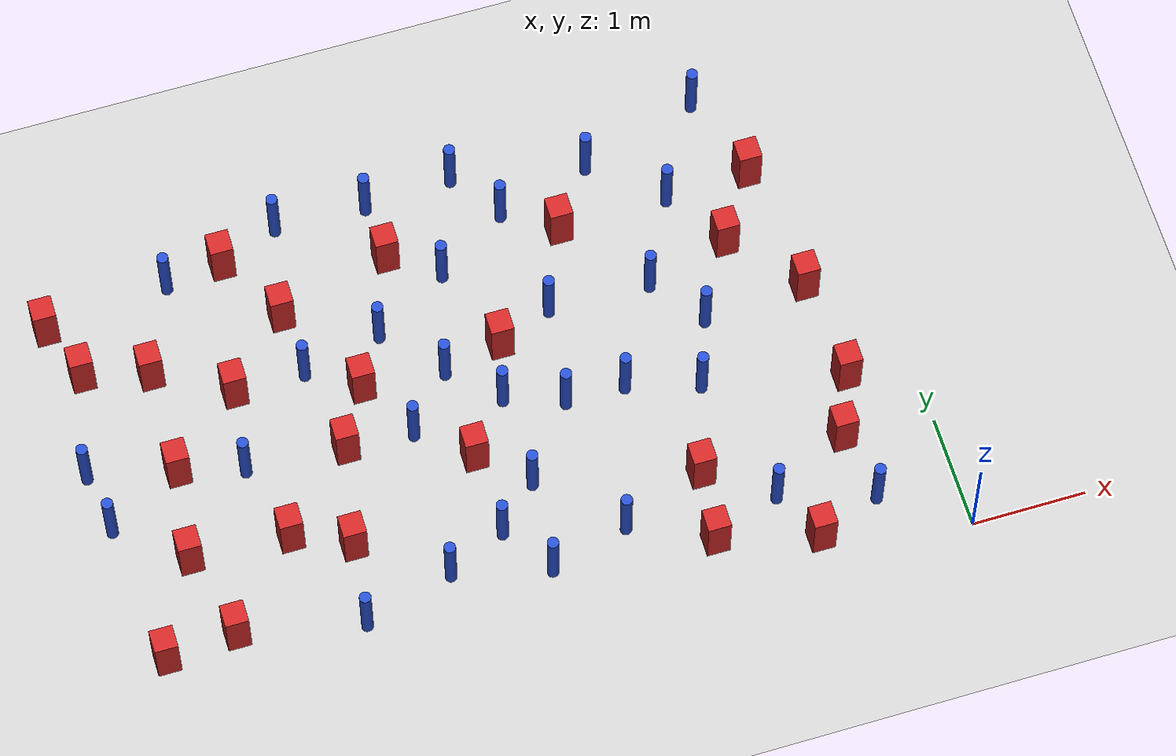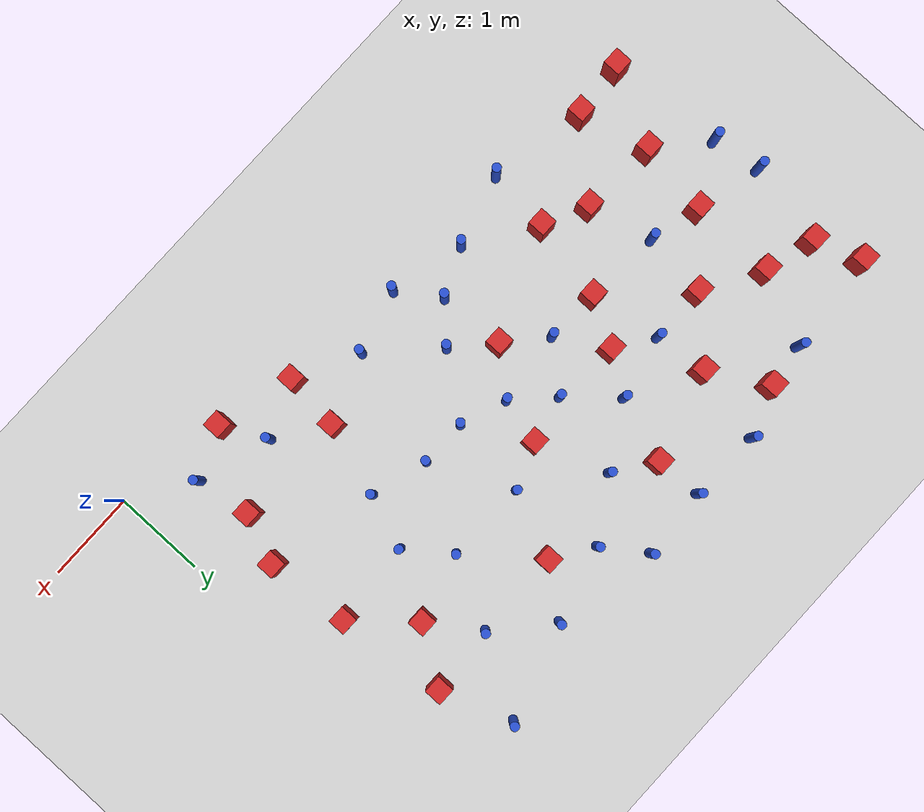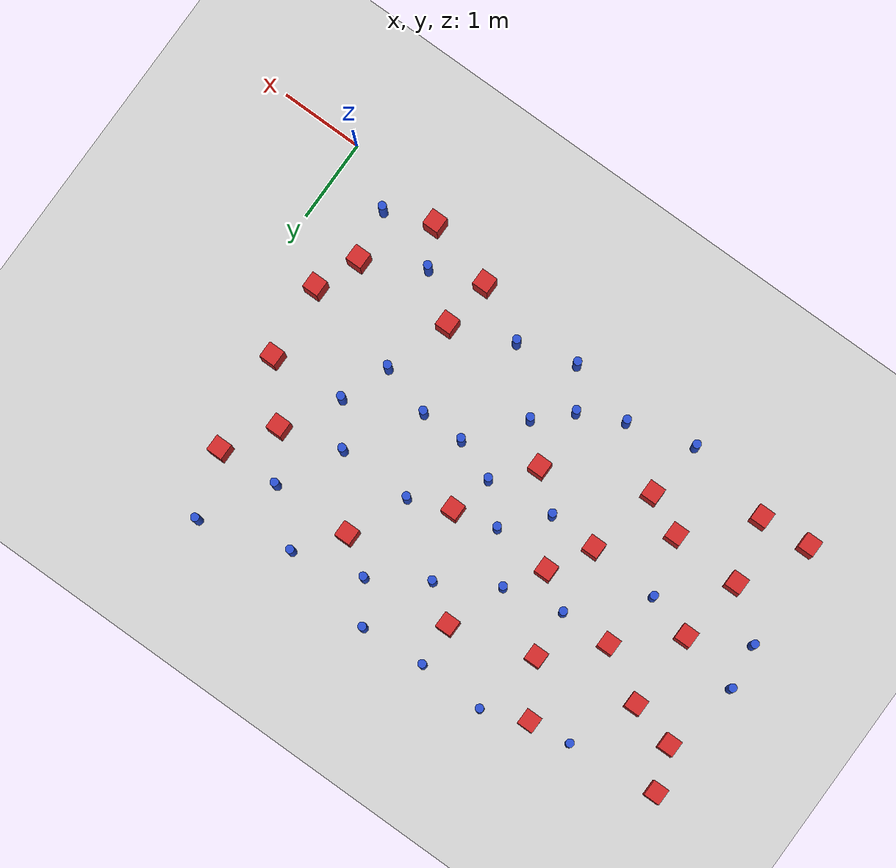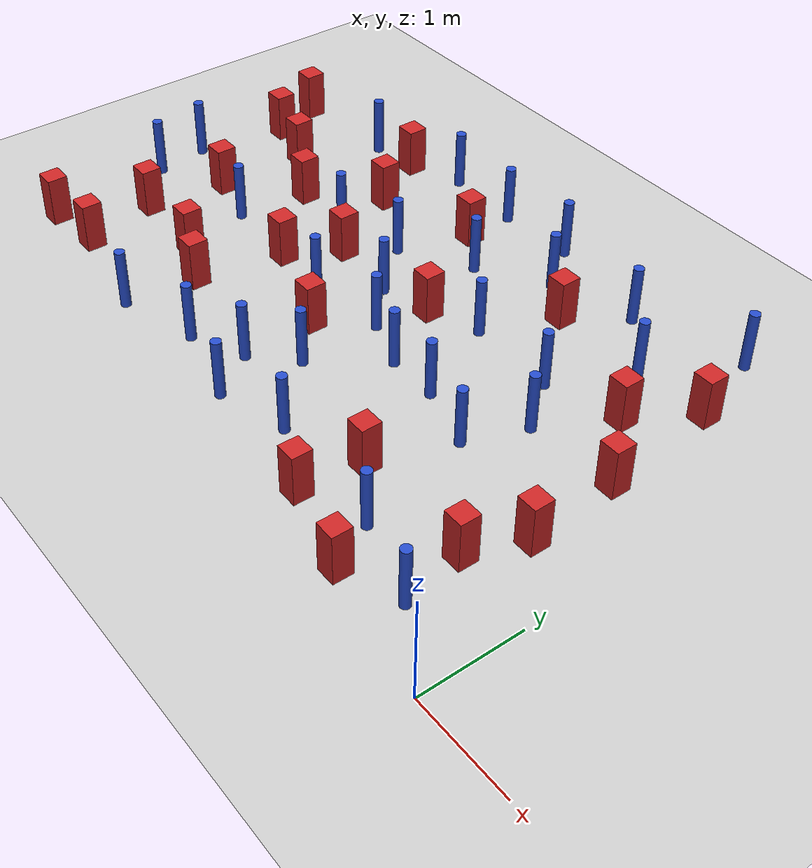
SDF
<sdf version="1.6">
 <world name="default">
  <model name="ground_plane">
   <static>1</static>
   <link name="link">
    <collision name="collision">
     <geometry><plane><normal>0 0 1</normal><size>100 100</size></plane></geometry>
     <surface><friction><ode><mu>100</mu><mu2>50</mu2></ode></friction></surface>
    </collision>
    <visual name="visual">
     <cast_shadows>0</cast_shadows>
     <geometry><plane><normal>0 0 1</normal><size>100 100</size></plane></geometry>
     <material>
      <ambient>1.0 1.0 1.0 1.0</ambient>
      <diffuse>0.8 0.8 0.8 1.0</diffuse>
      <specular>0.01 0.01 0.01 1.000000</specular>
     </material>
    </visual>
   </link>
  </model>
  <model name="square_post_obstacle5">
   <static>true</static>
   <pose>-6.98999241708 3.96937142927 1.91545236811e-07 -7.35059704564e-06 1.12565212e-07 2.39332434364e-05</pose>
   <link name="link">
    <pose>0 0 0.25 0 -0 0</pose>
    <inertial>
     <mass>100</mass>
     <inertia>
      <ixx>0.166667</ixx>
      <ixy>0</ixy>
      <ixz>0</ixz>
      <iyy>0.166667</iyy>
      <iyz>0</iyz>
      <izz>0.166667</izz>
     </inertia>
    </inertial>
    <collision name="collision"><geometry><box><size>.2 .2 .5</size></box></geometry></collision>
    <visual name="visual">
     <geometry><box><size>.2 .2 .5</size></box></geometry>
     <material>
      <script><name>Gazebo/Red</name><uri>file://media/materials/scripts/gazebo.material</uri></script>
     </material>
    </visual>
   </link>
  </model>
  <model name="square_post_obstacle8">
   <static>true</static>
   <pose>-2.52519117045 3.64244328598 1.91545236811e-07 -7.35059704564e-06 1.12565212e-07 2.39332434364e-05</pose>
   <link name="link">
    <pose>0 0 0.25 0 -0 0</pose>
    <inertial>
     <mass>100</mass>
     <inertia>
      <ixx>0.166667</ixx>
      <ixy>0</ixy>
      <ixz>0</ixz>
      <iyy>0.166667</iyy>
      <iyz>0</iyz>
      <izz>0.166667</izz>
     </inertia>
    </inertial>
    <collision name="collision"><geometry><box><size>.2 .2 .5</size></box></geometry></collision>
    <visual name="visual">
     <geometry><box><size>.2 .2 .5</size></box></geometry>
     <material>
      <script><name>Gazebo/Red</name><uri>file://media/materials/scripts/gazebo.material</uri></script>
     </material>
    </visual>
   </link>
  </model>
  <model name="pole_obstacle8">
   <static>true</static>
   <pose>-6.91975358773 2.00622611297 7.38925637345e-09 -8.47170692799e-08 1.24976765078e-08 -1.74513093016e-07</pose>
   <link name="link">
    <pose>0 0 0.3 0 -0 0</pose>
    <inertial>
     <mass>1</mass>
     <inertia><ixx>0.145833</ixx><ixy>0</ixy><ixz>0</ixz><iyy>0.145833</iyy><iyz>0</iyz><izz>0.125</izz></inertia>
    </inertial>
    <collision name="collision">
     <geometry><cylinder><radius>0.05</radius><length>.6</length></cylinder></geometry>
    </collision>
    <visual name="visual">
     <geometry><cylinder><radius>0.05</radius><length>.6</length></cylinder></geometry>
     <material>
      <script><name>Gazebo/Blue</name><uri>file://media/materials/scripts/gazebo.material</uri></script>
     </material>
    </visual>
   </link>
  </model>
  <model name="pole_obstacle10">
   <static>true</static>
   <pose>-2.79781469311 0.792266779906 7.38925637345e-09 -8.471706928e-08 1.24976765177e-08 -1.74513093012e-07</pose>
   <link name="link">
    <pose>0 0 0.3 0 -0 0</pose>
    <inertial>
     <mass>1</mass>
     <inertia><ixx>0.145833</ixx><ixy>0</ixy><ixz>0</ixz><iyy>0.145833</iyy><iyz>0</iyz><izz>0.125</izz></inertia>
    </inertial>
    <collision name="collision">
     <geometry><cylinder><radius>0.05</radius><length>.6</length></cylinder></geometry>
    </collision>
    <visual name="visual">
     <geometry><cylinder><radius>0.05</radius><length>.6</length></cylinder></geometry>
     <material>
      <script><name>Gazebo/Blue</name><uri>file://media/materials/scripts/gazebo.material</uri></script>
     </material>
    </visual>
   </link>
  </model>
  <model name="pole_obstacle16">
   <static>true</static>
   <pose>-3.49376932607 0.596809447296 7.38925637345e-09 -8.47170692796e-08 1.24976764768e-08 -1.74513093035e-07</pose>
   <link name="link">
    <pose>0 0 0.3 0 -0 0</pose>
    <inertial>
     <mass>1</mass>
     <inertia><ixx>0.145833</ixx><ixy>0</ixy><ixz>0</ixz><iyy>0.145833</iyy><iyz>0</iyz><izz>0.125</izz></inertia>
    </inertial>
    <collision name="collision">
     <geometry><cylinder><radius>0.05</radius><length>.6</length></cylinder></geometry>
    </collision>
    <visual name="visual">
     <geometry><cylinder><radius>0.05</radius><length>.6</length></cylinder></geometry>
     <material>
      <script><name>Gazebo/Blue</name><uri>file://media/materials/scripts/gazebo.material</uri></script>
     </material>
    </visual>
   </link>
  </model>
  <model name="pole_obstacle17">
   <static>true</static>
   <pose>-1.50419928283 0.696034674528 7.38925637345e-09 -8.47170692799e-08 1.24976765075e-08 -1.74513093017e-07</pose>
   <link name="link">
    <pose>0 0 0.3 0 -0 0</pose>
    <inertial>
     <mass>1</mass>
     <inertia><ixx>0.145833</ixx><ixy>0</ixy><ixz>0</ixz><iyy>0.145833</iyy><iyz>0</iyz><izz>0.125</izz></inertia>
    </inertial>
    <collision name="collision">
     <geometry><cylinder><radius>0.05</radius><length>.6</length></cylinder></geometry>
    </collision>
    <visual name="visual">
     <geometry><cylinder><radius>0.05</radius><length>.6</length></cylinder></geometry>
     <material>
      <script><name>Gazebo/Blue</name><uri>file://media/materials/scripts/gazebo.material</uri></script>
     </material>
    </visual>
   </link>
  </model>
  <model name="square_post_obstacle28">
   <static>true</static>
   <pose>-6.80364117076 3.45359508598 1.91545236811e-07 -7.35059704564e-06 1.12565212e-07 2.39332434364e-05</pose>
   <link name="link">
    <pose>0 0 0.25 0 -0 0</pose>
    <inertial>
     <mass>100</mass>
     <inertia>
      <ixx>0.166667</ixx>
      <ixy>0</ixy>
      <ixz>0</ixz>
      <iyy>0.166667</iyy>
      <iyz>0</iyz>
      <izz>0.166667</izz>
     </inertia>
    </inertial>
    <collision name="collision"><geometry><box><size>.2 .2 .5</size></box></geometry></collision>
    <visual name="visual">
     <geometry><box><size>.2 .2 .5</size></box></geometry>
     <material>
      <script><name>Gazebo/Red</name><uri>file://media/materials/scripts/gazebo.material</uri></script>
     </material>
    </visual>
   </link>
  </model>
  <model name="square_post_obstacle34">
   <static>true</static>
   <pose>-3.32184518788 2.73086201394 1.91545236811e-07 -7.35059704564e-06 1.12565212e-07 2.39332434364e-05</pose>
   <link name="link">
    <pose>0 0 0.25 0 -0 0</pose>
    <inertial>
     <mass>100</mass>
     <inertia>
      <ixx>0.166667</ixx>
      <ixy>0</ixy>
      <ixz>0</ixz>
      <iyy>0.166667</iyy>
      <iyz>0</iyz>
      <izz>0.166667</izz>
     </inertia>
    </inertial>
    <collision name="collision"><geometry><box><size>.2 .2 .5</size></box></geometry></collision>
    <visual name="visual">
     <geometry><box><size>.2 .2 .5</size></box></geometry>
     <material>
      <script><name>Gazebo/Red</name><uri>file://media/materials/scripts/gazebo.material</uri></script>
     </material>
    </visual>
   </link>
  </model>
  <model name="pole_obstacle32">
   <static>true</static>
   <pose>-4.2829016265 3.11226452791 7.38925637345e-09 -8.47170692798e-08 1.24976764937e-08 -1.74513093023e-07</pose>
   <link name="link">
    <pose>0 0 0.3 0 -0 0</pose>
    <inertial>
     <mass>1</mass>
     <inertia><ixx>0.145833</ixx><ixy>0</ixy><ixz>0</ixz><iyy>0.145833</iyy><iyz>0</iyz><izz>0.125</izz></inertia>
    </inertial>
    <collision name="collision">
     <geometry><cylinder><radius>0.05</radius><length>.6</length></cylinder></geometry>
    </collision>
    <visual name="visual">
     <geometry><cylinder><radius>0.05</radius><length>.6</length></cylinder></geometry>
     <material>
      <script><name>Gazebo/Blue</name><uri>file://media/materials/scripts/gazebo.material</uri></script>
     </material>
    </visual>
   </link>
  </model>
  <model name="pole_obstacle35">
   <static>true</static>
   <pose>-4.25554316395 2.13546606847 7.38925637345e-09 -8.47170692798e-08 1.24976764937e-08 -1.74513093023e-07</pose>
   <link name="link">
    <pose>0 0 0.3 0 -0 0</pose>
    <inertial>
     <mass>1</mass>
     <inertia><ixx>0.145833</ixx><ixy>0</ixy><ixz>0</ixz><iyy>0.145833</iyy><iyz>0</iyz><izz>0.125</izz></inertia>
    </inertial>
    <collision name="collision">
     <geometry><cylinder><radius>0.05</radius><length>.6</length></cylinder></geometry>
    </collision>
    <visual name="visual">
     <geometry><cylinder><radius>0.05</radius><length>.6</length></cylinder></geometry>
     <material>
      <script><name>Gazebo/Blue</name><uri>file://media/materials/scripts/gazebo.material</uri></script>
     </material>
    </visual>
   </link>
  </model>
  <model name="pole_obstacle36">
   <static>true</static>
   <pose>-5.10923216508 0.572883189968 7.38925637345e-09 -8.47170692799e-08 1.24976765038e-08 -1.74513093018e-07</pose>
   <link name="link">
    <pose>0 0 0.3 0 -0 0</pose>
    <inertial>
     <mass>1</mass>
     <inertia><ixx>0.145833</ixx><ixy>0</ixy><ixz>0</ixz><iyy>0.145833</iyy><iyz>0</iyz><izz>0.125</izz></inertia>
    </inertial>
    <collision name="collision">
     <geometry><cylinder><radius>0.05</radius><length>.6</length></cylinder></geometry>
    </collision>
    <visual name="visual">
     <geometry><cylinder><radius>0.05</radius><length>.6</length></cylinder></geometry>
     <material>
      <script><name>Gazebo/Blue</name><uri>file://media/materials/scripts/gazebo.material</uri></script>
     </material>
    </visual>
   </link>
  </model>
  <model name="square_post_obstacle40">
   <static>true</static>
   <pose>-6.24178530278 3.30212405767 1.91545236811e-07 -7.35059704564e-06 1.12565212e-07 2.39332434364e-05</pose>
   <link name="link">
    <pose>0 0 0.25 0 -0 0</pose>
    <inertial>
     <mass>100</mass>
     <inertia>
      <ixx>0.166667</ixx>
      <ixy>0</ixy>
      <ixz>0</ixz>
      <iyy>0.166667</iyy>
      <iyz>0</iyz>
      <izz>0.166667</izz>
     </inertia>
    </inertial>
    <collision name="collision"><geometry><box><size>.2 .2 .5</size></box></geometry></collision>
    <visual name="visual">
     <geometry><box><size>.2 .2 .5</size></box></geometry>
     <material>
      <script><name>Gazebo/Red</name><uri>file://media/materials/scripts/gazebo.material</uri></script>
     </material>
    </visual>
   </link>
  </model>
  <model name="square_post_obstacle44">
   <static>true</static>
   <pose>-6.16970190709 0.789479409449 1.91545236811e-07 -7.35059704564e-06 1.12565212e-07 2.39332434364e-05</pose>
   <link name="link">
    <pose>0 0 0.25 0 -0 0</pose>
    <inertial>
     <mass>100</mass>
     <inertia>
      <ixx>0.166667</ixx>
      <ixy>0</ixy>
      <ixz>0</ixz>
      <iyy>0.166667</iyy>
      <iyz>0</iyz>
      <izz>0.166667</izz>
     </inertia>
    </inertial>
    <collision name="collision"><geometry><box><size>.2 .2 .5</size></box></geometry></collision>
    <visual name="visual">
     <geometry><box><size>.2 .2 .5</size></box></geometry>
     <material>
      <script><name>Gazebo/Red</name><uri>file://media/materials/scripts/gazebo.material</uri></script>
     </material>
    </visual>
   </link>
  </model>
  <model name="square_post_obstacle48">
   <static>true</static>
   <pose>-5.39204827083 4.14547654439 1.91545236811e-07 -7.35059704564e-06 1.12565212e-07 2.39332434364e-05</pose>
   <link name="link">
    <pose>0 0 0.25 0 -0 0</pose>
    <inertial>
     <mass>100</mass>
     <inertia>
      <ixx>0.166667</ixx>
      <ixy>0</ixy>
      <ixz>0</ixz>
      <iyy>0.166667</iyy>
      <iyz>0</iyz>
      <izz>0.166667</izz>
     </inertia>
    </inertial>
    <collision name="collision"><geometry><box><size>.2 .2 .5</size></box></geometry></collision>
    <visual name="visual">
     <geometry><box><size>.2 .2 .5</size></box></geometry>
     <material>
      <script><name>Gazebo/Red</name><uri>file://media/materials/scripts/gazebo.material</uri></script>
     </material>
    </visual>
   </link>
  </model>
  <model name="pole_obstacle52">
   <static>true</static>
   <pose>-0.69982684014 0.451758939972 7.38925637345e-09 -8.471706928e-08 1.24976765086e-08 -1.74513093015e-07</pose>
   <link name="link">
    <pose>0 0 0.3 0 -0 0</pose>
    <inertial>
     <mass>1</mass>
     <inertia><ixx>0.145833</ixx><ixy>0</ixy><ixz>0</ixz><iyy>0.145833</iyy><iyz>0</iyz><izz>0.125</izz></inertia>
    </inertial>
    <collision name="collision">
     <geometry><cylinder><radius>0.05</radius><length>.6</length></cylinder></geometry>
    </collision>
    <visual name="visual">
     <geometry><cylinder><radius>0.05</radius><length>.6</length></cylinder></geometry>
     <material>
      <script><name>Gazebo/Blue</name><uri>file://media/materials/scripts/gazebo.material</uri></script>
     </material>
    </visual>
   </link>
  </model>
  <model name="square_post_obstacle64">
   <static>true</static>
   <pose>-6.25594976934 2.36200466918 1.91545236811e-07 -7.35059704564e-06 1.12565212e-07 2.39332434364e-05</pose>
   <link name="link">
    <pose>0 0 0.25 0 -0 0</pose>
    <inertial>
     <mass>100</mass>
     <inertia>
      <ixx>0.166667</ixx>
      <ixy>0</ixy>
      <ixz>0</ixz>
      <iyy>0.166667</iyy>
      <iyz>0</iyz>
      <izz>0.166667</izz>
     </inertia>
    </inertial>
    <collision name="collision"><geometry><box><size>.2 .2 .5</size></box></geometry></collision>
    <visual name="visual">
     <geometry><box><size>.2 .2 .5</size></box></geometry>
     <material>
      <script><name>Gazebo/Red</name><uri>file://media/materials/scripts/gazebo.material</uri></script>
     </material>
    </visual>
   </link>
  </model>
  <model name="pole_obstacle71">
   <static>true</static>
   <pose>-1.93177611833 2.91109107932 7.38925637345e-09 -8.47170692799e-08 1.24976765053e-08 -1.74513093017e-07</pose>
   <link name="link">
    <pose>0 0 0.3 0 -0 0</pose>
    <inertial>
     <mass>1</mass>
     <inertia><ixx>0.145833</ixx><ixy>0</ixy><ixz>0</ixz><iyy>0.145833</iyy><iyz>0</iyz><izz>0.125</izz></inertia>
    </inertial>
    <collision name="collision">
     <geometry><cylinder><radius>0.05</radius><length>.6</length></cylinder></geometry>
    </collision>
    <visual name="visual">
     <geometry><cylinder><radius>0.05</radius><length>.6</length></cylinder></geometry>
     <material>
      <script><name>Gazebo/Blue</name><uri>file://media/materials/scripts/gazebo.material</uri></script>
     </material>
    </visual>
   </link>
  </model>
  <model name="pole_obstacle74">
   <static>true</static>
   <pose>-1.54972284094 3.6614878591 7.38925637345e-09 -8.47170692799e-08 1.24976765053e-08 -1.74513093017e-07</pose>
   <link name="link">
    <pose>0 0 0.3 0 -0 0</pose>
    <inertial>
     <mass>1</mass>
     <inertia><ixx>0.145833</ixx><ixy>0</ixy><ixz>0</ixz><iyy>0.145833</iyy><iyz>0</iyz><izz>0.125</izz></inertia>
    </inertial>
    <collision name="collision">
     <geometry><cylinder><radius>0.05</radius><length>.6</length></cylinder></geometry>
    </collision>
    <visual name="visual">
     <geometry><cylinder><radius>0.05</radius><length>.6</length></cylinder></geometry>
     <material>
      <script><name>Gazebo/Blue</name><uri>file://media/materials/scripts/gazebo.material</uri></script>
     </material>
    </visual>
   </link>
  </model>
  <model name="square_post_obstacle80">
   <static>true</static>
   <pose>-4.84535821894 2.15911684776 1.91545236811e-07 -7.35059704564e-06 1.12565212e-07 2.39332434364e-05</pose>
   <link name="link">
    <pose>0 0 0.25 0 -0 0</pose>
    <inertial>
     <mass>100</mass>
     <inertia>
      <ixx>0.166667</ixx>
      <ixy>0</ixy>
      <ixz>0</ixz>
      <iyy>0.166667</iyy>
      <iyz>0</iyz>
      <izz>0.166667</izz>
     </inertia>
    </inertial>
    <collision name="collision"><geometry><box><size>.2 .2 .5</size></box></geometry></collision>
    <visual name="visual">
     <geometry><box><size>.2 .2 .5</size></box></geometry>
     <material>
      <script><name>Gazebo/Red</name><uri>file://media/materials/scripts/gazebo.material</uri></script>
     </material>
    </visual>
   </link>
  </model>
  <model name="pole_obstacle87">
   <static>true</static>
   <pose>-4.98737974748 2.94819570164 7.38925637345e-09 -8.47170692798e-08 1.24976764937e-08 -1.74513093023e-07</pose>
   <link name="link">
    <pose>0 0 0.3 0 -0 0</pose>
    <inertial>
     <mass>1</mass>
     <inertia><ixx>0.145833</ixx><ixy>0</ixy><ixz>0</ixz><iyy>0.145833</iyy><iyz>0</iyz><izz>0.125</izz></inertia>
    </inertial>
    <collision name="collision">
     <geometry><cylinder><radius>0.05</radius><length>.6</length></cylinder></geometry>
    </collision>
    <visual name="visual">
     <geometry><cylinder><radius>0.05</radius><length>.6</length></cylinder></geometry>
     <material>
      <script><name>Gazebo/Blue</name><uri>file://media/materials/scripts/gazebo.material</uri></script>
     </material>
    </visual>
   </link>
  </model>
  <model name="pole_obstacle92">
   <static>true</static>
   <pose>-1.06562229612 4.49181770895 7.38925637345e-09 -8.47170692799e-08 1.24976765033e-08 -1.74513093018e-07</pose>
   <link name="link">
    <pose>0 0 0.3 0 -0 0</pose>
    <inertial>
     <mass>1</mass>
     <inertia><ixx>0.145833</ixx><ixy>0</ixy><ixz>0</ixz><iyy>0.145833</iyy><iyz>0</iyz><izz>0.125</izz></inertia>
    </inertial>
    <collision name="collision">
     <geometry><cylinder><radius>0.05</radius><length>.6</length></cylinder></geometry>
    </collision>
    <visual name="visual">
     <geometry><cylinder><radius>0.05</radius><length>.6</length></cylinder></geometry>
     <material>
      <script><name>Gazebo/Blue</name><uri>file://media/materials/scripts/gazebo.material</uri></script>
     </material>
    </visual>
   </link>
  </model>
  <model name="square_post_obstacle84">
   <static>true</static>
   <pose>-3.82734107813 1.78002883543 1.91545236811e-07 -7.35059704564e-06 1.12565212e-07 2.39332434364e-05</pose>
   <link name="link">
    <pose>0 0 0.25 0 -0 0</pose>
    <inertial>
     <mass>100</mass>
     <inertia>
      <ixx>0.166667</ixx>
      <ixy>0</ixy>
      <ixz>0</ixz>
      <iyy>0.166667</iyy>
      <iyz>0</iyz>
      <izz>0.166667</izz>
     </inertia>
    </inertial>
    <collision name="collision"><geometry><box><size>.2 .2 .5</size></box></geometry></collision>
    <visual name="visual">
     <geometry><box><size>.2 .2 .5</size></box></geometry>
     <material>
      <script><name>Gazebo/Red</name><uri>file://media/materials/scripts/gazebo.material</uri></script>
     </material>
    </visual>
   </link>
  </model>
  <model name="pole_obstacle100">
   <static>true</static>
   <pose>-1.58048511842 2.45014951508 7.38925637345e-09 -8.47170692799e-08 1.24976765053e-08 -1.74513093017e-07</pose>
   <link name="link">
    <pose>0 0 0.3 0 -0 0</pose>
    <inertial>
     <mass>1</mass>
     <inertia><ixx>0.145833</ixx><ixy>0</ixy><ixz>0</ixz><iyy>0.145833</iyy><iyz>0</iyz><izz>0.125</izz></inertia>
    </inertial>
    <collision name="collision">
     <geometry><cylinder><radius>0.05</radius><length>.6</length></cylinder></geometry>
    </collision>
    <visual name="visual">
     <geometry><cylinder><radius>0.05</radius><length>.6</length></cylinder></geometry>
     <material>
      <script><name>Gazebo/Blue</name><uri>file://media/materials/scripts/gazebo.material</uri></script>
     </material>
    </visual>
   </link>
  </model>
  <model name="pole_obstacle110">
   <static>true</static>
   <pose>-3.42974630219 1.40898149596 7.38925637345e-09 -8.471706928e-08 1.24976765152e-08 -1.74513093012e-07</pose>
   <link name="link">
    <pose>0 0 0.3 0 -0 0</pose>
    <inertial>
     <mass>1</mass>
     <inertia><ixx>0.145833</ixx><ixy>0</ixy><ixz>0</ixz><iyy>0.145833</iyy><iyz>0</iyz><izz>0.125</izz></inertia>
    </inertial>
    <collision name="collision">
     <geometry><cylinder><radius>0.05</radius><length>.6</length></cylinder></geometry>
    </collision>
    <visual name="visual">
     <geometry><cylinder><radius>0.05</radius><length>.6</length></cylinder></geometry>
     <material>
      <script><name>Gazebo/Blue</name><uri>file://media/materials/scripts/gazebo.material</uri></script>
     </material>
    </visual>
   </link>
  </model>
  <model name="square_post_obstacle110">
   <static>true</static>
   <pose>-0.807407201912 1.06191888686 1.91545236811e-07 -7.35059704564e-06 1.12565212e-07 2.39332434364e-05</pose>
   <link name="link">
    <pose>0 0 0.25 0 -0 0</pose>
    <inertial>
     <mass>100</mass>
     <inertia>
      <ixx>0.166667</ixx>
      <ixy>0</ixy>
      <ixz>0</ixz>
      <iyy>0.166667</iyy>
      <iyz>0</iyz>
      <izz>0.166667</izz>
     </inertia>
    </inertial>
    <collision name="collision"><geometry><box><size>.2 .2 .5</size></box></geometry></collision>
    <visual name="visual">
     <geometry><box><size>.2 .2 .5</size></box></geometry>
     <material>
      <script><name>Gazebo/Red</name><uri>file://media/materials/scripts/gazebo.material</uri></script>
     </material>
    </visual>
   </link>
  </model>
  <model name="square_post_obstacle111">
   <static>true</static>
   <pose>-0.67257829505 2.51464468496 1.91545236811e-07 -7.35059704564e-06 1.12565212e-07 2.39332434364e-05</pose>
   <link name="link">
    <pose>0 0 0.25 0 -0 0</pose>
    <inertial>
     <mass>100</mass>
     <inertia>
      <ixx>0.166667</ixx>
      <ixy>0</ixy>
      <ixz>0</ixz>
      <iyy>0.166667</iyy>
      <iyz>0</iyz>
      <izz>0.166667</izz>
     </inertia>
    </inertial>
    <collision name="collision"><geometry><box><size>.2 .2 .5</size></box></geometry></collision>
    <visual name="visual">
     <geometry><box><size>.2 .2 .5</size></box></geometry>
     <material>
      <script><name>Gazebo/Red</name><uri>file://media/materials/scripts/gazebo.material</uri></script>
     </material>
    </visual>
   </link>
  </model>
  <model name="pole_obstacle120">
   <static>true</static>
   <pose>-2.8275062139 2.93026826397 7.38925637345e-09 -8.47170692798e-08 1.24976764939e-08 -1.74513093025e-07</pose>
   <link name="link">
    <pose>0 0 0.3 0 -0 0</pose>
    <inertial>
     <mass>1</mass>
     <inertia><ixx>0.145833</ixx><ixy>0</ixy><ixz>0</ixz><iyy>0.145833</iyy><iyz>0</iyz><izz>0.125</izz></inertia>
    </inertial>
    <collision name="collision">
     <geometry><cylinder><radius>0.05</radius><length>.6</length></cylinder></geometry>
    </collision>
    <visual name="visual">
     <geometry><cylinder><radius>0.05</radius><length>.6</length></cylinder></geometry>
     <material>
      <script><name>Gazebo/Blue</name><uri>file://media/materials/scripts/gazebo.material</uri></script>
     </material>
    </visual>
   </link>
  </model>
  <model name="square_post_obstacle112">
   <static>true</static>
   <pose>-5.02511898304 1.28298043166 1.91545236811e-07 -7.35059704564e-06 1.12565212e-07 2.39332434364e-05</pose>
   <link name="link">
    <pose>0 0 0.25 0 -0 0</pose>
    <inertial>
     <mass>100</mass>
     <inertia>
      <ixx>0.166667</ixx>
      <ixy>0</ixy>
      <ixz>0</ixz>
      <iyy>0.166667</iyy>
      <iyz>0</iyz>
      <izz>0.166667</izz>
     </inertia>
    </inertial>
    <collision name="collision"><geometry><box><size>.2 .2 .5</size></box></geometry></collision>
    <visual name="visual">
     <geometry><box><size>.2 .2 .5</size></box></geometry>
     <material>
      <script><name>Gazebo/Red</name><uri>file://media/materials/scripts/gazebo.material</uri></script>
     </material>
    </visual>
   </link>
  </model>
  <model name="pole_obstacle124">
   <static>true</static>
   <pose>-4.86258409524 4.3605082129 7.38925637345e-09 -8.47170692796e-08 1.24976764786e-08 -1.74513093032e-07</pose>
   <link name="link">
    <pose>0 0 0.3 0 -0 0</pose>
    <inertial>
     <mass>1</mass>
     <inertia><ixx>0.145833</ixx><ixy>0</ixy><ixz>0</ixz><iyy>0.145833</iyy><iyz>0</iyz><izz>0.125</izz></inertia>
    </inertial>
    <collision name="collision">
     <geometry><cylinder><radius>0.05</radius><length>.6</length></cylinder></geometry>
    </collision>
    <visual name="visual">
     <geometry><cylinder><radius>0.05</radius><length>.6</length></cylinder></geometry>
     <material>
      <script><name>Gazebo/Blue</name><uri>file://media/materials/scripts/gazebo.material</uri></script>
     </material>
    </visual>
   </link>
  </model>
  <model name="pole_obstacle127">
   <static>true</static>
   <pose>-2.41984373222 2.04627271072 7.38925637345e-09 -8.47170692799e-08 1.24976765087e-08 -1.74513093015e-07</pose>
   <link name="link">
    <pose>0 0 0.3 0 -0 0</pose>
    <inertial>
     <mass>1</mass>
     <inertia><ixx>0.145833</ixx><ixy>0</ixy><ixz>0</ixz><iyy>0.145833</iyy><iyz>0</iyz><izz>0.125</izz></inertia>
    </inertial>
    <collision name="collision">
     <geometry><cylinder><radius>0.05</radius><length>.6</length></cylinder></geometry>
    </collision>
    <visual name="visual">
     <geometry><cylinder><radius>0.05</radius><length>.6</length></cylinder></geometry>
     <material>
      <script><name>Gazebo/Blue</name><uri>file://media/materials/scripts/gazebo.material</uri></script>
     </material>
    </visual>
   </link>
  </model>
  <model name="pole_obstacle129">
   <static>true</static>
   <pose>-5.89682059391 4.08822724177 7.38925637345e-09 -8.47170692796e-08 1.24976764786e-08 -1.74513093032e-07</pose>
   <link name="link">
    <pose>0 0 0.3 0 -0 0</pose>
    <inertial>
     <mass>1</mass>
     <inertia><ixx>0.145833</ixx><ixy>0</ixy><ixz>0</ixz><iyy>0.145833</iyy><iyz>0</iyz><izz>0.125</izz></inertia>
    </inertial>
    <collision name="collision">
     <geometry><cylinder><radius>0.05</radius><length>.6</length></cylinder></geometry>
    </collision>
    <visual name="visual">
     <geometry><cylinder><radius>0.05</radius><length>.6</length></cylinder></geometry>
     <material>
      <script><name>Gazebo/Blue</name><uri>file://media/materials/scripts/gazebo.material</uri></script>
     </material>
    </visual>
   </link>
  </model>
  <model name="square_post_obstacle114">
   <static>true</static>
   <pose>-0.810778995877 3.70336763409 1.91545236811e-07 -7.35059704564e-06 1.12565212e-07 2.39332434364e-05</pose>
   <link name="link">
    <pose>0 0 0.25 0 -0 0</pose>
    <inertial>
     <mass>100</mass>
     <inertia>
      <ixx>0.166667</ixx>
      <ixy>0</ixy>
      <ixz>0</ixz>
      <iyy>0.166667</iyy>
      <iyz>0</iyz>
      <izz>0.166667</izz>
     </inertia>
    </inertial>
    <collision name="collision"><geometry><box><size>.2 .2 .5</size></box></geometry></collision>
    <visual name="visual">
     <geometry><box><size>.2 .2 .5</size></box></geometry>
     <material>
      <script><name>Gazebo/Red</name><uri>file://media/materials/scripts/gazebo.material</uri></script>
     </material>
    </visual>
   </link>
  </model>
  <model name="square_post_obstacle122">
   <static>true</static>
   <pose>-6.78220424214 0.738059182499 1.91545236811e-07 -7.35059704564e-06 1.12565212e-07 2.39332434364e-05</pose>
   <link name="link">
    <pose>0 0 0.25 0 -0 0</pose>
    <inertial>
     <mass>100</mass>
     <inertia>
      <ixx>0.166667</ixx>
      <ixy>0</ixy>
      <ixz>0</ixz>
      <iyy>0.166667</iyy>
      <iyz>0</iyz>
      <izz>0.166667</izz>
     </inertia>
    </inertial>
    <collision name="collision"><geometry><box><size>.2 .2 .5</size></box></geometry></collision>
    <visual name="visual">
     <geometry><box><size>.2 .2 .5</size></box></geometry>
     <material>
      <script><name>Gazebo/Red</name><uri>file://media/materials/scripts/gazebo.material</uri></script>
     </material>
    </visual>
   </link>
  </model>
  <model name="square_post_obstacle134">
   <static>true</static>
   <pose>-5.50816311301 1.50885475396 1.91545236811e-07 -7.35059704564e-06 1.12565212e-07 2.39332434364e-05</pose>
   <link name="link">
    <pose>0 0 0.25 0 -0 0</pose>
    <inertial>
     <mass>100</mass>
     <inertia>
      <ixx>0.166667</ixx>
      <ixy>0</ixy>
      <ixz>0</ixz>
      <iyy>0.166667</iyy>
      <iyz>0</iyz>
      <izz>0.166667</izz>
     </inertia>
    </inertial>
    <collision name="collision"><geometry><box><size>.2 .2 .5</size></box></geometry></collision>
    <visual name="visual">
     <geometry><box><size>.2 .2 .5</size></box></geometry>
     <material>
      <script><name>Gazebo/Red</name><uri>file://media/materials/scripts/gazebo.material</uri></script>
     </material>
    </visual>
   </link>
  </model>
  <model name="pole_obstacle151">
   <static>true</static>
   <pose>-3.79963959673 1.0435700654 7.38925637345e-09 -8.47170692796e-08 1.2497676474e-08 -1.74513093036e-07</pose>
   <link name="link">
    <pose>0 0 0.3 0 -0 0</pose>
    <inertial>
     <mass>1</mass>
     <inertia><ixx>0.145833</ixx><ixy>0</ixy><ixz>0</ixz><iyy>0.145833</iyy><iyz>0</iyz><izz>0.125</izz></inertia>
    </inertial>
    <collision name="collision">
     <geometry><cylinder><radius>0.05</radius><length>.6</length></cylinder></geometry>
    </collision>
    <visual name="visual">
     <geometry><cylinder><radius>0.05</radius><length>.6</length></cylinder></geometry>
     <material>
      <script><name>Gazebo/Blue</name><uri>file://media/materials/scripts/gazebo.material</uri></script>
     </material>
    </visual>
   </link>
  </model>
  <model name="square_post_obstacle143">
   <static>true</static>
   <pose>-0.597730812959 1.59750562058 1.91545236811e-07 -7.35059704564e-06 1.12565212e-07 2.39332434364e-05</pose>
   <link name="link">
    <pose>0 0 0.25 0 -0 0</pose>
    <inertial>
     <mass>100</mass>
     <inertia>
      <ixx>0.166667</ixx>
      <ixy>0</ixy>
      <ixz>0</ixz>
      <iyy>0.166667</iyy>
      <iyz>0</iyz>
      <izz>0.166667</izz>
     </inertia>
    </inertial>
    <collision name="collision"><geometry><box><size>.2 .2 .5</size></box></geometry></collision>
    <visual name="visual">
     <geometry><box><size>.2 .2 .5</size></box></geometry>
     <material>
      <script><name>Gazebo/Red</name><uri>file://media/materials/scripts/gazebo.material</uri></script>
     </material>
    </visual>
   </link>
  </model>
  <model name="pole_obstacle159">
   <static>true</static>
   <pose>-3.60681114287 3.51740484351 7.38925637345e-09 -8.471706928e-08 1.24976765098e-08 -1.74513093016e-07</pose>
   <link name="link">
    <pose>0 0 0.3 0 -0 0</pose>
    <inertial>
     <mass>1</mass>
     <inertia><ixx>0.145833</ixx><ixy>0</ixy><ixz>0</ixz><iyy>0.145833</iyy><iyz>0</iyz><izz>0.125</izz></inertia>
    </inertial>
    <collision name="collision">
     <geometry><cylinder><radius>0.05</radius><length>.6</length></cylinder></geometry>
    </collision>
    <visual name="visual">
     <geometry><cylinder><radius>0.05</radius><length>.6</length></cylinder></geometry>
     <material>
      <script><name>Gazebo/Blue</name><uri>file://media/materials/scripts/gazebo.material</uri></script>
     </material>
    </visual>
   </link>
  </model>
  <model name="pole_obstacle164">
   <static>true</static>
   <pose>-5.70228219868 2.21925079728 7.38925637345e-09 -8.47170692798e-08 1.24976764937e-08 -1.74513093023e-07</pose>
   <link name="link">
    <pose>0 0 0.3 0 -0 0</pose>
    <inertial>
     <mass>1</mass>
     <inertia><ixx>0.145833</ixx><ixy>0</ixy><ixz>0</ixz><iyy>0.145833</iyy><iyz>0</iyz><izz>0.125</izz></inertia>
    </inertial>
    <collision name="collision">
     <geometry><cylinder><radius>0.05</radius><length>.6</length></cylinder></geometry>
    </collision>
    <visual name="visual">
     <geometry><cylinder><radius>0.05</radius><length>.6</length></cylinder></geometry>
     <material>
      <script><name>Gazebo/Blue</name><uri>file://media/materials/scripts/gazebo.material</uri></script>
     </material>
    </visual>
   </link>
  </model>
  <model name="pole_obstacle167">
   <static>true</static>
   <pose>-3.28092966278 4.38605696803 7.38925637345e-09 -8.47170692794e-08 1.24976764468e-08 -1.7451309304e-07</pose>
   <link name="link">
    <pose>0 0 0.3 0 -0 0</pose>
    <inertial>
     <mass>1</mass>
     <inertia><ixx>0.145833</ixx><ixy>0</ixy><ixz>0</ixz><iyy>0.145833</iyy><iyz>0</iyz><izz>0.125</izz></inertia>
    </inertial>
    <collision name="collision">
     <geometry><cylinder><radius>0.05</radius><length>.6</length></cylinder></geometry>
    </collision>
    <visual name="visual">
     <geometry><cylinder><radius>0.05</radius><length>.6</length></cylinder></geometry>
     <material>
      <script><name>Gazebo/Blue</name><uri>file://media/materials/scripts/gazebo.material</uri></script>
     </material>
    </visual>
   </link>
  </model>
  <model name="square_post_obstacle163">
   <static>true</static>
   <pose>-4.56051797862 2.67159772055 1.91545236811e-07 -7.35059704564e-06 1.12565212e-07 2.39332434364e-05</pose>
   <link name="link">
    <pose>0 0 0.25 0 -0 0</pose>
    <inertial>
     <mass>100</mass>
     <inertia>
      <ixx>0.166667</ixx>
      <ixy>0</ixy>
      <ixz>0</ixz>
      <iyy>0.166667</iyy>
      <iyz>0</iyz>
      <izz>0.166667</izz>
     </inertia>
    </inertial>
    <collision name="collision"><geometry><box><size>.2 .2 .5</size></box></geometry></collision>
    <visual name="visual">
     <geometry><box><size>.2 .2 .5</size></box></geometry>
     <material>
      <script><name>Gazebo/Red</name><uri>file://media/materials/scripts/gazebo.material</uri></script>
     </material>
    </visual>
   </link>
  </model>
  <model name="pole_obstacle182">
   <static>true</static>
   <pose>-2.12762895711 4.16385672301 7.38925637345e-09 -8.47170692798e-08 1.24976765033e-08 -1.74513093019e-07</pose>
   <link name="link">
    <pose>0 0 0.3 0 -0 0</pose>
    <inertial>
     <mass>1</mass>
     <inertia><ixx>0.145833</ixx><ixy>0</ixy><ixz>0</ixz><iyy>0.145833</iyy><iyz>0</iyz><izz>0.125</izz></inertia>
    </inertial>
    <collision name="collision">
     <geometry><cylinder><radius>0.05</radius><length>.6</length></cylinder></geometry>
    </collision>
    <visual name="visual">
     <geometry><cylinder><radius>0.05</radius><length>.6</length></cylinder></geometry>
     <material>
      <script><name>Gazebo/Blue</name><uri>file://media/materials/scripts/gazebo.material</uri></script>
     </material>
    </visual>
   </link>
  </model>
  <model name="pole_obstacle183">
   <static>true</static>
   <pose>-3.84278177083 2.61303513541 7.38925637345e-09 -8.471706928e-08 1.24976765098e-08 -1.74513093016e-07</pose>
   <link name="link">
    <pose>0 0 0.3 0 -0 0</pose>
    <inertial>
     <mass>1</mass>
     <inertia><ixx>0.145833</ixx><ixy>0</ixy><ixz>0</ixz><iyy>0.145833</iyy><iyz>0</iyz><izz>0.125</izz></inertia>
    </inertial>
    <collision name="collision">
     <geometry><cylinder><radius>0.05</radius><length>.6</length></cylinder></geometry>
    </collision>
    <visual name="visual">
     <geometry><cylinder><radius>0.05</radius><length>.6</length></cylinder></geometry>
     <material>
      <script><name>Gazebo/Blue</name><uri>file://media/materials/scripts/gazebo.material</uri></script>
     </material>
    </visual>
   </link>
  </model>
  <model name="pole_obstacle185">
   <static>true</static>
   <pose>-2.94076932622 2.05030917799 7.38925637345e-09 -8.47170692798e-08 1.24976764939e-08 -1.74513093025e-07</pose>
   <link name="link">
    <pose>0 0 0.3 0 -0 0</pose>
    <inertial>
     <mass>1</mass>
     <inertia><ixx>0.145833</ixx><ixy>0</ixy><ixz>0</ixz><iyy>0.145833</iyy><iyz>0</iyz><izz>0.125</izz></inertia>
    </inertial>
    <collision name="collision">
     <geometry><cylinder><radius>0.05</radius><length>.6</length></cylinder></geometry>
    </collision>
    <visual name="visual">
     <geometry><cylinder><radius>0.05</radius><length>.6</length></cylinder></geometry>
     <material>
      <script><name>Gazebo/Blue</name><uri>file://media/materials/scripts/gazebo.material</uri></script>
     </material>
    </visual>
   </link>
  </model>
  <model name="square_post_obstacle173">
   <static>true</static>
   <pose>-2.05030675101 1.07816687537 1.91545236811e-07 -7.35059704564e-06 1.12565212e-07 2.39332434364e-05</pose>
   <link name="link">
    <pose>0 0 0.25 0 -0 0</pose>
    <inertial>
     <mass>100</mass>
     <inertia>
      <ixx>0.166667</ixx>
      <ixy>0</ixy>
      <ixz>0</ixz>
      <iyy>0.166667</iyy>
      <iyz>0</iyz>
      <izz>0.166667</izz>
     </inertia>
    </inertial>
    <collision name="collision"><geometry><box><size>.2 .2 .5</size></box></geometry></collision>
    <visual name="visual">
     <geometry><box><size>.2 .2 .5</size></box></geometry>
     <material>
      <script><name>Gazebo/Red</name><uri>file://media/materials/scripts/gazebo.material</uri></script>
     </material>
    </visual>
   </link>
  </model>
  <model name="square_post_obstacle183">
   <static>true</static>
   <pose>-5.0345275531 3.52232282592 1.91545236811e-07 -7.35059704564e-06 1.12565212e-07 2.39332434364e-05</pose>
   <link name="link">
    <pose>0 0 0.25 0 -0 0</pose>
    <inertial>
     <mass>100</mass>
     <inertia>
      <ixx>0.166667</ixx>
      <ixy>0</ixy>
      <ixz>0</ixz>
      <iyy>0.166667</iyy>
      <iyz>0</iyz>
      <izz>0.166667</izz>
     </inertia>
    </inertial>
    <collision name="collision"><geometry><box><size>.2 .2 .5</size></box></geometry></collision>
    <visual name="visual">
     <geometry><box><size>.2 .2 .5</size></box></geometry>
     <material>
      <script><name>Gazebo/Red</name><uri>file://media/materials/scripts/gazebo.material</uri></script>
     </material>
    </visual>
   </link>
  </model>
  <model name="square_post_obstacle185">
   <static>true</static>
   <pose>-4.02909620449 3.80873329492 1.91545236811e-07 -7.35059704564e-06 1.12565212e-07 2.39332434364e-05</pose>
   <link name="link">
    <pose>0 0 0.25 0 -0 0</pose>
    <inertial>
     <mass>100</mass>
     <inertia>
      <ixx>0.166667</ixx>
      <ixy>0</ixy>
      <ixz>0</ixz>
      <iyy>0.166667</iyy>
      <iyz>0</iyz>
      <izz>0.166667</izz>
     </inertia>
    </inertial>
    <collision name="collision"><geometry><box><size>.2 .2 .5</size></box></geometry></collision>
    <visual name="visual">
     <geometry><box><size>.2 .2 .5</size></box></geometry>
     <material>
      <script><name>Gazebo/Red</name><uri>file://media/materials/scripts/gazebo.material</uri></script>
     </material>
    </visual>
   </link>
  </model>
  <model name="square_post_obstacle188">
   <static>true</static>
   <pose>-6.36503698563 1.55598563309 1.91545236811e-07 -7.35059704564e-06 1.12565212e-07 2.39332434364e-05</pose>
   <link name="link">
    <pose>0 0 0.25 0 -0 0</pose>
    <inertial>
     <mass>100</mass>
     <inertia>
      <ixx>0.166667</ixx>
      <ixy>0</ixy>
      <ixz>0</ixz>
      <iyy>0.166667</iyy>
      <iyz>0</iyz>
      <izz>0.166667</izz>
     </inertia>
    </inertial>
    <collision name="collision"><geometry><box><size>.2 .2 .5</size></box></geometry></collision>
    <visual name="visual">
     <geometry><box><size>.2 .2 .5</size></box></geometry>
     <material>
      <script><name>Gazebo/Red</name><uri>file://media/materials/scripts/gazebo.material</uri></script>
     </material>
    </visual>
   </link>
  </model>
  <model name="square_post_obstacle191">
   <static>true</static>
   <pose>-2.12020428465 0.460458328771 1.91545236811e-07 -7.35059704564e-06 1.12565212e-07 2.39332434364e-05</pose>
   <link name="link">
    <pose>0 0 0.25 0 -0 0</pose>
    <inertial>
     <mass>100</mass>
     <inertia>
      <ixx>0.166667</ixx>
      <ixy>0</ixy>
      <ixz>0</ixz>
      <iyy>0.166667</iyy>
      <iyz>0</iyz>
      <izz>0.166667</izz>
     </inertia>
    </inertial>
    <collision name="collision"><geometry><box><size>.2 .2 .5</size></box></geometry></collision>
    <visual name="visual">
     <geometry><box><size>.2 .2 .5</size></box></geometry>
     <material>
      <script><name>Gazebo/Red</name><uri>file://media/materials/scripts/gazebo.material</uri></script>
     </material>
    </visual>
   </link>
  </model>
  <model name="square_post_obstacle203">
   <static>true</static>
   <pose>-1.26843886416 0.233402493626 1.91545236811e-07 -7.35059704564e-06 1.12565212e-07 2.39332434364e-05</pose>
   <link name="link">
    <pose>0 0 0.25 0 -0 0</pose>
    <inertial>
     <mass>100</mass>
     <inertia>
      <ixx>0.166667</ixx>
      <ixy>0</ixy>
      <ixz>0</ixz>
      <iyy>0.166667</iyy>
      <iyz>0</iyz>
      <izz>0.166667</izz>
     </inertia>
    </inertial>
    <collision name="collision"><geometry><box><size>.2 .2 .5</size></box></geometry></collision>
    <visual name="visual">
     <geometry><box><size>.2 .2 .5</size></box></geometry>
     <material>
      <script><name>Gazebo/Red</name><uri>file://media/materials/scripts/gazebo.material</uri></script>
     </material>
    </visual>
   </link>
  </model>
  <model name="pole_obstacle190">
   <static>true</static>
   <pose>-4.05918720716 4.33302596075 7.38925637345e-09 -8.47170692796e-08 1.24976764786e-08 -1.74513093032e-07</pose>
   <link name="link">
    <pose>0 0 0.3 0 -0 0</pose>
    <inertial>
     <mass>1</mass>
     <inertia><ixx>0.145833</ixx><ixy>0</ixy><ixz>0</ixz><iyy>0.145833</iyy><iyz>0</iyz><izz>0.125</izz></inertia>
    </inertial>
    <collision name="collision">
     <geometry><cylinder><radius>0.05</radius><length>.6</length></cylinder></geometry>
    </collision>
    <visual name="visual">
     <geometry><cylinder><radius>0.05</radius><length>.6</length></cylinder></geometry>
     <material>
      <script><name>Gazebo/Blue</name><uri>file://media/materials/scripts/gazebo.material</uri></script>
     </material>
    </visual>
   </link>
  </model>
  <model name="square_post_obstacle208">
   <static>true</static>
   <pose>-1.19720109351 3.11749786814 1.91545236811e-07 -7.35059704564e-06 1.12565212e-07 2.39332434364e-05</pose>
   <link name="link">
    <pose>0 0 0.25 0 -0 0</pose>
    <inertial>
     <mass>100</mass>
     <inertia>
      <ixx>0.166667</ixx>
      <ixy>0</ixy>
      <ixz>0</ixz>
      <iyy>0.166667</iyy>
      <iyz>0</iyz>
      <izz>0.166667</izz>
     </inertia>
    </inertial>
    <collision name="collision"><geometry><box><size>.2 .2 .5</size></box></geometry></collision>
    <visual name="visual">
     <geometry><box><size>.2 .2 .5</size></box></geometry>
     <material>
      <script><name>Gazebo/Red</name><uri>file://media/materials/scripts/gazebo.material</uri></script>
     </material>
    </visual>
   </link>
  </model>
  <model name="pole_obstacle207">
   <static>true</static>
   <pose>-1.79616451058 1.86517761182 7.38925637345e-09 -8.471706928e-08 1.24976765079e-08 -1.74513093017e-07</pose>
   <link name="link">
    <pose>0 0 0.3 0 -0 0</pose>
    <inertial>
     <mass>1</mass>
     <inertia><ixx>0.145833</ixx><ixy>0</ixy><ixz>0</ixz><iyy>0.145833</iyy><iyz>0</iyz><izz>0.125</izz></inertia>
    </inertial>
    <collision name="collision">
     <geometry><cylinder><radius>0.05</radius><length>.6</length></cylinder></geometry>
    </collision>
    <visual name="visual">
     <geometry><cylinder><radius>0.05</radius><length>.6</length></cylinder></geometry>
     <material>
      <script><name>Gazebo/Blue</name><uri>file://media/materials/scripts/gazebo.material</uri></script>
     </material>
    </visual>
   </link>
  </model>
  <model name="pole_obstacle208">
   <static>true</static>
   <pose>-4.3200138362 0.801489602717 7.38925637345e-09 -8.47170692799e-08 1.24976765038e-08 -1.74513093018e-07</pose>
   <link name="link">
    <pose>0 0 0.3 0 -0 0</pose>
    <inertial>
     <mass>1</mass>
     <inertia><ixx>0.145833</ixx><ixy>0</ixy><ixz>0</ixz><iyy>0.145833</iyy><iyz>0</iyz><izz>0.125</izz></inertia>
    </inertial>
    <collision name="collision">
     <geometry><cylinder><radius>0.05</radius><length>.6</length></cylinder></geometry>
    </collision>
    <visual name="visual">
     <geometry><cylinder><radius>0.05</radius><length>.6</length></cylinder></geometry>
     <material>
      <script><name>Gazebo/Blue</name><uri>file://media/materials/scripts/gazebo.material</uri></script>
     </material>
    </visual>
   </link>
  </model>
  <model name="pole_obstacle209">
   <static>true</static>
   <pose>-6.99983350125 2.54539155006 7.38925637345e-09 -8.47170692798e-08 1.24976764937e-08 -1.74513093023e-07</pose>
   <link name="link">
    <pose>0 0 0.3 0 -0 0</pose>
    <inertial>
     <mass>1</mass>
     <inertia><ixx>0.145833</ixx><ixy>0</ixy><ixz>0</ixz><iyy>0.145833</iyy><iyz>0</iyz><izz>0.125</izz></inertia>
    </inertial>
    <collision name="collision">
     <geometry><cylinder><radius>0.05</radius><length>.6</length></cylinder></geometry>
    </collision>
    <visual name="visual">
     <geometry><cylinder><radius>0.05</radius><length>.6</length></cylinder></geometry>
     <material>
      <script><name>Gazebo/Blue</name><uri>file://media/materials/scripts/gazebo.material</uri></script>
     </material>
    </visual>
   </link>
  </model>
  <model name="pole_obstacle213">
   <static>true</static>
   <pose>-3.44530078535 2.23210371108 7.38925637345e-09 -8.47170692798e-08 1.24976764939e-08 -1.74513093025e-07</pose>
   <link name="link">
    <pose>0 0 0.3 0 -0 0</pose>
    <inertial>
     <mass>1</mass>
     <inertia><ixx>0.145833</ixx><ixy>0</ixy><ixz>0</ixz><iyy>0.145833</iyy><iyz>0</iyz><izz>0.125</izz></inertia>
    </inertial>
    <collision name="collision">
     <geometry><cylinder><radius>0.05</radius><length>.6</length></cylinder></geometry>
    </collision>
    <visual name="visual">
     <geometry><cylinder><radius>0.05</radius><length>.6</length></cylinder></geometry>
     <material>
      <script><name>Gazebo/Blue</name><uri>file://media/materials/scripts/gazebo.material</uri></script>
     </material>
    </visual>
   </link>
  </model>
  <model name="square_post_obstacle212">
   <static>true</static>
   <pose>-5.60682174354 2.93677796177 1.91545236811e-07 -7.35059704564e-06 1.12565212e-07 2.39332434364e-05</pose>
   <link name="link">
    <pose>0 0 0.25 0 -0 0</pose>
    <inertial>
     <mass>100</mass>
     <inertia>
      <ixx>0.166667</ixx>
      <ixy>0</ixy>
      <ixz>0</ixz>
      <iyy>0.166667</iyy>
      <iyz>0</iyz>
      <izz>0.166667</izz>
     </inertia>
    </inertial>
    <collision name="collision"><geometry><box><size>.2 .2 .5</size></box></geometry></collision>
    <visual name="visual">
     <geometry><box><size>.2 .2 .5</size></box></geometry>
     <material>
      <script><name>Gazebo/Red</name><uri>file://media/materials/scripts/gazebo.material</uri></script>
     </material>
    </visual>
   </link>
  </model>
  <model name="pole_obstacle224">
   <static>true</static>
   <pose>-2.96298283047 3.93058650732 7.38925637345e-09 -8.47170692798e-08 1.24976764939e-08 -1.74513093025e-07</pose>
   <link name="link">
    <pose>0 0 0.3 0 -0 0</pose>
    <inertial>
     <mass>1</mass>
     <inertia><ixx>0.145833</ixx><ixy>0</ixy><ixz>0</ixz><iyy>0.145833</iyy><iyz>0</iyz><izz>0.125</izz></inertia>
    </inertial>
    <collision name="collision">
     <geometry><cylinder><radius>0.05</radius><length>.6</length></cylinder></geometry>
    </collision>
    <visual name="visual">
     <geometry><cylinder><radius>0.05</radius><length>.6</length></cylinder></geometry>
     <material>
      <script><name>Gazebo/Blue</name><uri>file://media/materials/scripts/gazebo.material</uri></script>
     </material>
    </visual>
   </link>
  </model>
 </world>
</sdf>
